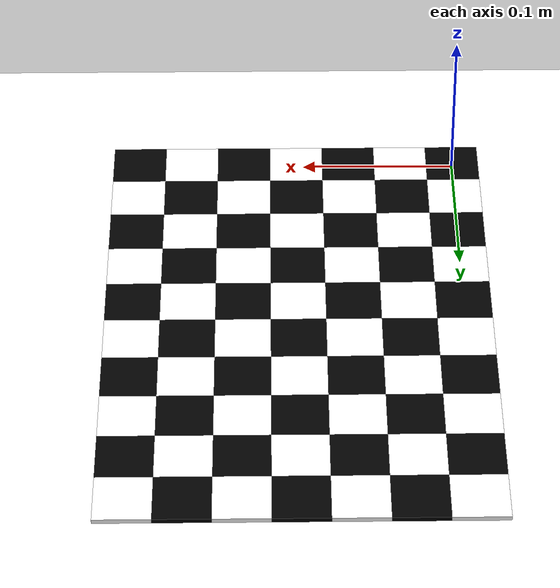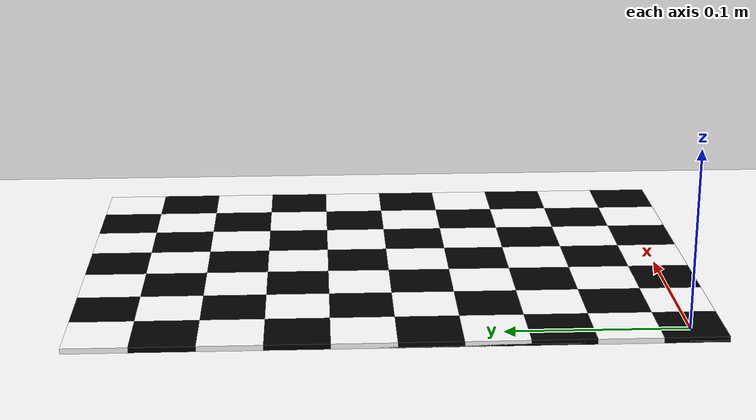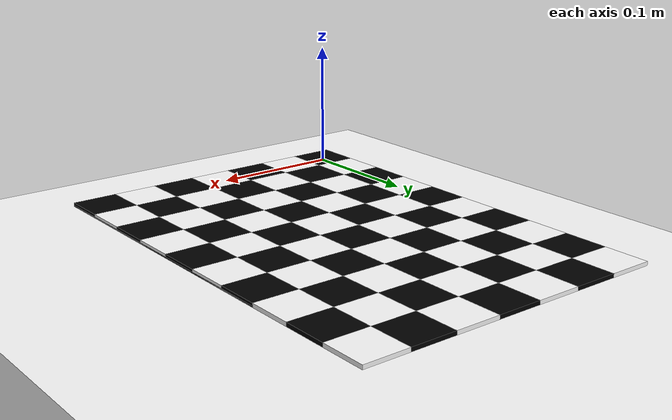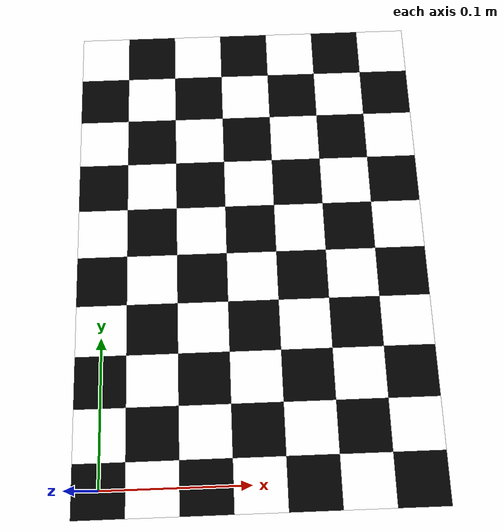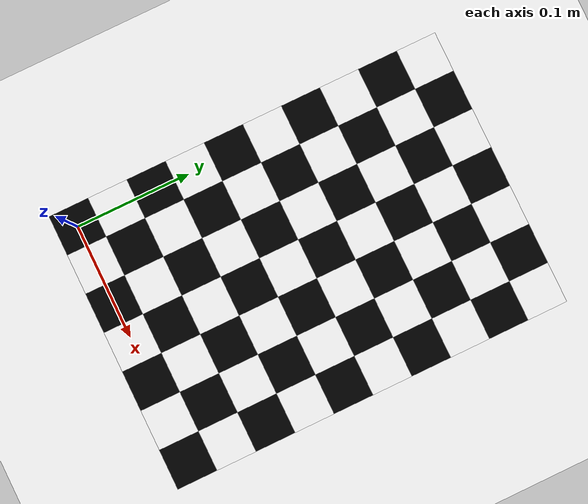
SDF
<sdf version="1.4">
  <model name='chessboard'>
  <static>true</static>
  <pose>0 0 0 0 0 0</pose>

    <!-- Auxiliary white background -->
     <link name='chessboard_back_plane'>
       <visual name='block0'>
         <pose>0 0 -0.05 0 0 0</pose>
           <geometry>
             <box>
               <size>10 10 0.05</size>
             </box>
           </geometry>
         <material>
           <ambient>1 1 1 1</ambient>
           <diffuse>1 1 1 1</diffuse>
           <specular>1 1 1 1</specular>
         </material>
       </visual>
     </link>

     <link name='chessboard_body'>
      <visual name='block0'>
        <pose>0 0 0.001 0 0 0</pose>
          <geometry>
            <box>
            <size>0.035 0.035 0.003</size>
            </box>
          </geometry>
        <material>
          <ambient>0 0 0 1</ambient>
          <diffuse>0 0 0 1</diffuse>
          <specular>0 0 0 1</specular>
        </material>
      </visual>
      <visual name='block1'>
        <pose>0 0.035 0.001 0 0 0</pose>
          <geometry>
            <box>
            <size>0.035 0.035 0.003</size>
            </box>
          </geometry>
        <material>
          <ambient>1 1 1 1</ambient>
          <diffuse>1 1 1 1</diffuse>
          <specular>1 1 1 1</specular>
        </material>
      </visual>
      <visual name='block2'>
        <pose>0 0.07 0.001 0 0 0</pose>
          <geometry>
            <box>
            <size>0.035 0.035 0.003</size>
            </box>
          </geometry>
        <material>
          <ambient>0 0 0 1</ambient>
          <diffuse>0 0 0 1</diffuse>
          <specular>0 0 0 1</specular>
        </material>
      </visual>
      <visual name='block3'>
        <pose>0 0.105 0.001 0 0 0</pose>
          <geometry>
            <box>
            <size>0.035 0.035 0.003</size>
            </box>
          </geometry>
        <material>
          <ambient>1 1 1 1</ambient>
          <diffuse>1 1 1 1</diffuse>
          <specular>1 1 1 1</specular>
        </material>
      </visual>
      <visual name='block4'>
        <pose>0 0.14 0.001 0 0 0</pose>
          <geometry>
            <box>
            <size>0.035 0.035 0.003</size>
            </box>
          </geometry>
        <material>
          <ambient>0 0 0 1</ambient>
          <diffuse>0 0 0 1</diffuse>
          <specular>0 0 0 1</specular>
        </material>
      </visual>
      <visual name='block5'>
        <pose>0 0.175 0.001 0 0 0</pose>
          <geometry>
            <box>
            <size>0.035 0.035 0.003</size>
            </box>
          </geometry>
        <material>
          <ambient>1 1 1 1</ambient>
          <diffuse>1 1 1 1</diffuse>
          <specular>1 1 1 1</specular>
        </material>
      </visual>
      <visual name='block6'>
        <pose>0 0.21 0.001 0 0 0</pose>
          <geometry>
            <box>
            <size>0.035 0.035 0.003</size>
            </box>
          </geometry>
        <material>
          <ambient>0 0 0 1</ambient>
          <diffuse>0 0 0 1</diffuse>
          <specular>0 0 0 1</specular>
        </material>
      </visual>
      <visual name='block7'>
        <pose>0 0.245 0.001 0 0 0</pose>
          <geometry>
            <box>
            <size>0.035 0.035 0.003</size>
            </box>
          </geometry>
        <material>
          <ambient>1 1 1 1</ambient>
          <diffuse>1 1 1 1</diffuse>
          <specular>1 1 1 1</specular>
        </material>
      </visual>
      <visual name='block8'>
        <pose>0 0.28 0.001 0 0 0</pose>
          <geometry>
            <box>
            <size>0.035 0.035 0.003</size>
            </box>
          </geometry>
        <material>
          <ambient>0 0 0 1</ambient>
          <diffuse>0 0 0 1</diffuse>
          <specular>0 0 0 1</specular>
        </material>
      </visual>
      <visual name='block9'>
        <pose>0 0.315 0.001 0 0 0</pose>
          <geometry>
            <box>
            <size>0.035 0.035 0.003</size>
            </box>
          </geometry>
        <material>
          <ambient>1 1 1 1</ambient>
          <diffuse>1 1 1 1</diffuse>
          <specular>1 1 1 1</specular>
        </material>
      </visual>
      <visual name='block7'>
        <pose>0.035 0 0.001 0 0 0</pose>
          <geometry>
            <box>
            <size>0.035 0.035 0.003</size>
            </box>
          </geometry>
        <material>
          <ambient>1 1 1 1</ambient>
          <diffuse>1 1 1 1</diffuse>
          <specular>1 1 1 1</specular>
        </material>
      </visual>
      <visual name='block8'>
        <pose>0.035 0.035 0.001 0 0 0</pose>
          <geometry>
            <box>
            <size>0.035 0.035 0.003</size>
            </box>
          </geometry>
        <material>
          <ambient>0 0 0 1</ambient>
          <diffuse>0 0 0 1</diffuse>
          <specular>0 0 0 1</specular>
        </material>
      </visual>
      <visual name='block9'>
        <pose>0.035 0.07 0.001 0 0 0</pose>
          <geometry>
            <box>
            <size>0.035 0.035 0.003</size>
            </box>
          </geometry>
        <material>
          <ambient>1 1 1 1</ambient>
          <diffuse>1 1 1 1</diffuse>
          <specular>1 1 1 1</specular>
        </material>
      </visual>
      <visual name='block10'>
        <pose>0.035 0.105 0.001 0 0 0</pose>
          <geometry>
            <box>
            <size>0.035 0.035 0.003</size>
            </box>
          </geometry>
        <material>
          <ambient>0 0 0 1</ambient>
          <diffuse>0 0 0 1</diffuse>
          <specular>0 0 0 1</specular>
        </material>
      </visual>
      <visual name='block11'>
        <pose>0.035 0.14 0.001 0 0 0</pose>
          <geometry>
            <box>
            <size>0.035 0.035 0.003</size>
            </box>
          </geometry>
        <material>
          <ambient>1 1 1 1</ambient>
          <diffuse>1 1 1 1</diffuse>
          <specular>1 1 1 1</specular>
        </material>
      </visual>
      <visual name='block12'>
        <pose>0.035 0.175 0.001 0 0 0</pose>
          <geometry>
            <box>
            <size>0.035 0.035 0.003</size>
            </box>
          </geometry>
        <material>
          <ambient>0 0 0 1</ambient>
          <diffuse>0 0 0 1</diffuse>
          <specular>0 0 0 1</specular>
        </material>
      </visual>
      <visual name='block13'>
        <pose>0.035 0.21 0.001 0 0 0</pose>
          <geometry>
            <box>
            <size>0.035 0.035 0.003</size>
            </box>
          </geometry>
        <material>
          <ambient>1 1 1 1</ambient>
          <diffuse>1 1 1 1</diffuse>
          <specular>1 1 1 1</specular>
        </material>
      </visual>
      <visual name='block14'>
        <pose>0.035 0.245 0.001 0 0 0</pose>
          <geometry>
            <box>
            <size>0.035 0.035 0.003</size>
            </box>
          </geometry>
        <material>
          <ambient>0 0 0 1</ambient>
          <diffuse>0 0 0 1</diffuse>
          <specular>0 0 0 1</specular>
        </material>
      </visual>
      <visual name='block15'>
        <pose>0.035 0.28 0.001 0 0 0</pose>
          <geometry>
            <box>
            <size>0.035 0.035 0.003</size>
            </box>
          </geometry>
        <material>
          <ambient>1 1 1 1</ambient>
          <diffuse>1 1 1 1</diffuse>
          <specular>1 1 1 1</specular>
        </material>
      </visual>
      <visual name='block16'>
        <pose>0.035 0.315 0.001 0 0 0</pose>
          <geometry>
            <box>
            <size>0.035 0.035 0.003</size>
            </box>
          </geometry>
        <material>
          <ambient>0 0 0 1</ambient>
          <diffuse>0 0 0 1</diffuse>
          <specular>0 0 0 1</specular>
        </material>
      </visual>
      <visual name='block14'>
        <pose>0.07 0 0.001 0 0 0</pose>
          <geometry>
            <box>
            <size>0.035 0.035 0.003</size>
            </box>
          </geometry>
        <material>
          <ambient>0 0 0 1</ambient>
          <diffuse>0 0 0 1</diffuse>
          <specular>0 0 0 1</specular>
        </material>
      </visual>
      <visual name='block15'>
        <pose>0.07 0.035 0.001 0 0 0</pose>
          <geometry>
            <box>
            <size>0.035 0.035 0.003</size>
            </box>
          </geometry>
        <material>
          <ambient>1 1 1 1</ambient>
          <diffuse>1 1 1 1</diffuse>
          <specular>1 1 1 1</specular>
        </material>
      </visual>
      <visual name='block16'>
        <pose>0.07 0.07 0.001 0 0 0</pose>
          <geometry>
            <box>
            <size>0.035 0.035 0.003</size>
            </box>
          </geometry>
        <material>
          <ambient>0 0 0 1</ambient>
          <diffuse>0 0 0 1</diffuse>
          <specular>0 0 0 1</specular>
        </material>
      </visual>
      <visual name='block17'>
        <pose>0.07 0.105 0.001 0 0 0</pose>
          <geometry>
            <box>
            <size>0.035 0.035 0.003</size>
            </box>
          </geometry>
        <material>
          <ambient>1 1 1 1</ambient>
          <diffuse>1 1 1 1</diffuse>
          <specular>1 1 1 1</specular>
        </material>
      </visual>
      <visual name='block18'>
        <pose>0.07 0.14 0.001 0 0 0</pose>
          <geometry>
            <box>
            <size>0.035 0.035 0.003</size>
            </box>
          </geometry>
        <material>
          <ambient>0 0 0 1</ambient>
          <diffuse>0 0 0 1</diffuse>
          <specular>0 0 0 1</specular>
        </material>
      </visual>
      <visual name='block19'>
        <pose>0.07 0.175 0.001 0 0 0</pose>
          <geometry>
            <box>
            <size>0.035 0.035 0.003</size>
            </box>
          </geometry>
        <material>
          <ambient>1 1 1 1</ambient>
          <diffuse>1 1 1 1</diffuse>
          <specular>1 1 1 1</specular>
        </material>
      </visual>
      <visual name='block20'>
        <pose>0.07 0.21 0.001 0 0 0</pose>
          <geometry>
            <box>
            <size>0.035 0.035 0.003</size>
            </box>
          </geometry>
        <material>
          <ambient>0 0 0 1</ambient>
          <diffuse>0 0 0 1</diffuse>
          <specular>0 0 0 1</specular>
        </material>
      </visual>
      <visual name='block21'>
        <pose>0.07 0.245 0.001 0 0 0</pose>
          <geometry>
            <box>
            <size>0.035 0.035 0.003</size>
            </box>
          </geometry>
        <material>
          <ambient>1 1 1 1</ambient>
          <diffuse>1 1 1 1</diffuse>
          <specular>1 1 1 1</specular>
        </material>
      </visual>
      <visual name='block22'>
        <pose>0.07 0.28 0.001 0 0 0</pose>
          <geometry>
            <box>
            <size>0.035 0.035 0.003</size>
            </box>
          </geometry>
        <material>
          <ambient>0 0 0 1</ambient>
          <diffuse>0 0 0 1</diffuse>
          <specular>0 0 0 1</specular>
        </material>
      </visual>
      <visual name='block23'>
        <pose>0.07 0.315 0.001 0 0 0</pose>
          <geometry>
            <box>
            <size>0.035 0.035 0.003</size>
            </box>
          </geometry>
        <material>
          <ambient>1 1 1 1</ambient>
          <diffuse>1 1 1 1</diffuse>
          <specular>1 1 1 1</specular>
        </material>
      </visual>
      <visual name='block21'>
        <pose>0.105 0 0.001 0 0 0</pose>
          <geometry>
            <box>
            <size>0.035 0.035 0.003</size>
            </box>
          </geometry>
        <material>
          <ambient>1 1 1 1</ambient>
          <diffuse>1 1 1 1</diffuse>
          <specular>1 1 1 1</specular>
        </material>
      </visual>
      <visual name='block22'>
        <pose>0.105 0.035 0.001 0 0 0</pose>
          <geometry>
            <box>
            <size>0.035 0.035 0.003</size>
            </box>
          </geometry>
        <material>
          <ambient>0 0 0 1</ambient>
          <diffuse>0 0 0 1</diffuse>
          <specular>0 0 0 1</specular>
        </material>
      </visual>
      <visual name='block23'>
        <pose>0.105 0.07 0.001 0 0 0</pose>
          <geometry>
            <box>
            <size>0.035 0.035 0.003</size>
            </box>
          </geometry>
        <material>
          <ambient>1 1 1 1</ambient>
          <diffuse>1 1 1 1</diffuse>
          <specular>1 1 1 1</specular>
        </material>
      </visual>
      <visual name='block24'>
        <pose>0.105 0.105 0.001 0 0 0</pose>
          <geometry>
            <box>
            <size>0.035 0.035 0.003</size>
            </box>
          </geometry>
        <material>
          <ambient>0 0 0 1</ambient>
          <diffuse>0 0 0 1</diffuse>
          <specular>0 0 0 1</specular>
        </material>
      </visual>
      <visual name='block25'>
        <pose>0.105 0.14 0.001 0 0 0</pose>
          <geometry>
            <box>
            <size>0.035 0.035 0.003</size>
            </box>
          </geometry>
        <material>
          <ambient>1 1 1 1</ambient>
          <diffuse>1 1 1 1</diffuse>
          <specular>1 1 1 1</specular>
        </material>
      </visual>
      <visual name='block26'>
        <pose>0.105 0.175 0.001 0 0 0</pose>
          <geometry>
            <box>
            <size>0.035 0.035 0.003</size>
            </box>
          </geometry>
        <material>
          <ambient>0 0 0 1</ambient>
          <diffuse>0 0 0 1</diffuse>
          <specular>0 0 0 1</specular>
        </material>
      </visual>
      <visual name='block27'>
        <pose>0.105 0.21 0.001 0 0 0</pose>
          <geometry>
            <box>
            <size>0.035 0.035 0.003</size>
            </box>
          </geometry>
        <material>
          <ambient>1 1 1 1</ambient>
          <diffuse>1 1 1 1</diffuse>
          <specular>1 1 1 1</specular>
        </material>
      </visual>
      <visual name='block28'>
        <pose>0.105 0.245 0.001 0 0 0</pose>
          <geometry>
            <box>
            <size>0.035 0.035 0.003</size>
            </box>
          </geometry>
        <material>
          <ambient>0 0 0 1</ambient>
          <diffuse>0 0 0 1</diffuse>
          <specular>0 0 0 1</specular>
        </material>
      </visual>
      <visual name='block29'>
        <pose>0.105 0.28 0.001 0 0 0</pose>
          <geometry>
            <box>
            <size>0.035 0.035 0.003</size>
            </box>
          </geometry>
        <material>
          <ambient>1 1 1 1</ambient>
          <diffuse>1 1 1 1</diffuse>
          <specular>1 1 1 1</specular>
        </material>
      </visual>
      <visual name='block30'>
        <pose>0.105 0.315 0.001 0 0 0</pose>
          <geometry>
            <box>
            <size>0.035 0.035 0.003</size>
            </box>
          </geometry>
        <material>
          <ambient>0 0 0 1</ambient>
          <diffuse>0 0 0 1</diffuse>
          <specular>0 0 0 1</specular>
        </material>
      </visual>
      <visual name='block28'>
        <pose>0.14 0 0.001 0 0 0</pose>
          <geometry>
            <box>
            <size>0.035 0.035 0.003</size>
            </box>
          </geometry>
        <material>
          <ambient>0 0 0 1</ambient>
          <diffuse>0 0 0 1</diffuse>
          <specular>0 0 0 1</specular>
        </material>
      </visual>
      <visual name='block29'>
        <pose>0.14 0.035 0.001 0 0 0</pose>
          <geometry>
            <box>
            <size>0.035 0.035 0.003</size>
            </box>
          </geometry>
        <material>
          <ambient>1 1 1 1</ambient>
          <diffuse>1 1 1 1</diffuse>
          <specular>1 1 1 1</specular>
        </material>
      </visual>
      <visual name='block30'>
        <pose>0.14 0.07 0.001 0 0 0</pose>
          <geometry>
            <box>
            <size>0.035 0.035 0.003</size>
            </box>
          </geometry>
        <material>
          <ambient>0 0 0 1</ambient>
          <diffuse>0 0 0 1</diffuse>
          <specular>0 0 0 1</specular>
        </material>
      </visual>
      <visual name='block31'>
        <pose>0.14 0.105 0.001 0 0 0</pose>
          <geometry>
            <box>
            <size>0.035 0.035 0.003</size>
            </box>
          </geometry>
        <material>
          <ambient>1 1 1 1</ambient>
          <diffuse>1 1 1 1</diffuse>
          <specular>1 1 1 1</specular>
        </material>
      </visual>
      <visual name='block32'>
        <pose>0.14 0.14 0.001 0 0 0</pose>
          <geometry>
            <box>
            <size>0.035 0.035 0.003</size>
            </box>
          </geometry>
        <material>
          <ambient>0 0 0 1</ambient>
          <diffuse>0 0 0 1</diffuse>
          <specular>0 0 0 1</specular>
        </material>
      </visual>
      <visual name='block33'>
        <pose>0.14 0.175 0.001 0 0 0</pose>
          <geometry>
            <box>
            <size>0.035 0.035 0.003</size>
            </box>
          </geometry>
        <material>
          <ambient>1 1 1 1</ambient>
          <diffuse>1 1 1 1</diffuse>
          <specular>1 1 1 1</specular>
        </material>
      </visual>
      <visual name='block34'>
        <pose>0.14 0.21 0.001 0 0 0</pose>
          <geometry>
            <box>
            <size>0.035 0.035 0.003</size>
            </box>
          </geometry>
        <material>
          <ambient>0 0 0 1</ambient>
          <diffuse>0 0 0 1</diffuse>
          <specular>0 0 0 1</specular>
        </material>
      </visual>
      <visual name='block35'>
        <pose>0.14 0.245 0.001 0 0 0</pose>
          <geometry>
            <box>
            <size>0.035 0.035 0.003</size>
            </box>
          </geometry>
        <material>
          <ambient>1 1 1 1</ambient>
          <diffuse>1 1 1 1</diffuse>
          <specular>1 1 1 1</specular>
        </material>
      </visual>
      <visual name='block36'>
        <pose>0.14 0.28 0.001 0 0 0</pose>
          <geometry>
            <box>
            <size>0.035 0.035 0.003</size>
            </box>
          </geometry>
        <material>
          <ambient>0 0 0 1</ambient>
          <diffuse>0 0 0 1</diffuse>
          <specular>0 0 0 1</specular>
        </material>
      </visual>
      <visual name='block37'>
        <pose>0.14 0.315 0.001 0 0 0</pose>
          <geometry>
            <box>
            <size>0.035 0.035 0.003</size>
            </box>
          </geometry>
        <material>
          <ambient>1 1 1 1</ambient>
          <diffuse>1 1 1 1</diffuse>
          <specular>1 1 1 1</specular>
        </material>
      </visual>
      <visual name='block35'>
        <pose>0.175 0 0.001 0 0 0</pose>
          <geometry>
            <box>
            <size>0.035 0.035 0.003</size>
            </box>
          </geometry>
        <material>
          <ambient>1 1 1 1</ambient>
          <diffuse>1 1 1 1</diffuse>
          <specular>1 1 1 1</specular>
        </material>
      </visual>
      <visual name='block36'>
        <pose>0.175 0.035 0.001 0 0 0</pose>
          <geometry>
            <box>
            <size>0.035 0.035 0.003</size>
            </box>
          </geometry>
        <material>
          <ambient>0 0 0 1</ambient>
          <diffuse>0 0 0 1</diffuse>
          <specular>0 0 0 1</specular>
        </material>
      </visual>
      <visual name='block37'>
        <pose>0.175 0.07 0.001 0 0 0</pose>
          <geometry>
            <box>
            <size>0.035 0.035 0.003</size>
            </box>
          </geometry>
        <material>
          <ambient>1 1 1 1</ambient>
          <diffuse>1 1 1 1</diffuse>
          <specular>1 1 1 1</specular>
        </material>
      </visual>
      <visual name='block38'>
        <pose>0.175 0.105 0.001 0 0 0</pose>
          <geometry>
            <box>
            <size>0.035 0.035 0.003</size>
            </box>
          </geometry>
        <material>
          <ambient>0 0 0 1</ambient>
          <diffuse>0 0 0 1</diffuse>
          <specular>0 0 0 1</specular>
        </material>
      </visual>
      <visual name='block39'>
        <pose>0.175 0.14 0.001 0 0 0</pose>
          <geometry>
            <box>
            <size>0.035 0.035 0.003</size>
            </box>
          </geometry>
        <material>
          <ambient>1 1 1 1</ambient>
          <diffuse>1 1 1 1</diffuse>
          <specular>1 1 1 1</specular>
        </material>
      </visual>
      <visual name='block40'>
        <pose>0.175 0.175 0.001 0 0 0</pose>
          <geometry>
            <box>
            <size>0.035 0.035 0.003</size>
            </box>
          </geometry>
        <material>
          <ambient>0 0 0 1</ambient>
          <diffuse>0 0 0 1</diffuse>
          <specular>0 0 0 1</specular>
        </material>
      </visual>
      <visual name='block41'>
        <pose>0.175 0.21 0.001 0 0 0</pose>
          <geometry>
            <box>
            <size>0.035 0.035 0.003</size>
            </box>
          </geometry>
        <material>
          <ambient>1 1 1 1</ambient>
          <diffuse>1 1 1 1</diffuse>
          <specular>1 1 1 1</specular>
        </material>
      </visual>
      <visual name='block42'>
        <pose>0.175 0.245 0.001 0 0 0</pose>
          <geometry>
            <box>
            <size>0.035 0.035 0.003</size>
            </box>
          </geometry>
        <material>
          <ambient>0 0 0 1</ambient>
          <diffuse>0 0 0 1</diffuse>
          <specular>0 0 0 1</specular>
        </material>
      </visual>
      <visual name='block43'>
        <pose>0.175 0.28 0.001 0 0 0</pose>
          <geometry>
            <box>
            <size>0.035 0.035 0.003</size>
            </box>
          </geometry>
        <material>
          <ambient>1 1 1 1</ambient>
          <diffuse>1 1 1 1</diffuse>
          <specular>1 1 1 1</specular>
        </material>
      </visual>
      <visual name='block44'>
        <pose>0.175 0.315 0.001 0 0 0</pose>
          <geometry>
            <box>
            <size>0.035 0.035 0.003</size>
            </box>
          </geometry>
        <material>
          <ambient>0 0 0 1</ambient>
          <diffuse>0 0 0 1</diffuse>
          <specular>0 0 0 1</specular>
        </material>
      </visual>
      <visual name='block42'>
        <pose>0.21 0 0.001 0 0 0</pose>
          <geometry>
            <box>
            <size>0.035 0.035 0.003</size>
            </box>
          </geometry>
        <material>
          <ambient>0 0 0 1</ambient>
          <diffuse>0 0 0 1</diffuse>
          <specular>0 0 0 1</specular>
        </material>
      </visual>
      <visual name='block43'>
        <pose>0.21 0.035 0.001 0 0 0</pose>
          <geometry>
            <box>
            <size>0.035 0.035 0.003</size>
            </box>
          </geometry>
        <material>
          <ambient>1 1 1 1</ambient>
          <diffuse>1 1 1 1</diffuse>
          <specular>1 1 1 1</specular>
        </material>
      </visual>
      <visual name='block44'>
        <pose>0.21 0.07 0.001 0 0 0</pose>
          <geometry>
            <box>
            <size>0.035 0.035 0.003</size>
            </box>
          </geometry>
        <material>
          <ambient>0 0 0 1</ambient>
          <diffuse>0 0 0 1</diffuse>
          <specular>0 0 0 1</specular>
        </material>
      </visual>
      <visual name='block45'>
        <pose>0.21 0.105 0.001 0 0 0</pose>
          <geometry>
            <box>
            <size>0.035 0.035 0.003</size>
            </box>
          </geometry>
        <material>
          <ambient>1 1 1 1</ambient>
          <diffuse>1 1 1 1</diffuse>
          <specular>1 1 1 1</specular>
        </material>
      </visual>
      <visual name='block46'>
        <pose>0.21 0.14 0.001 0 0 0</pose>
          <geometry>
            <box>
            <size>0.035 0.035 0.003</size>
            </box>
          </geometry>
        <material>
          <ambient>0 0 0 1</ambient>
          <diffuse>0 0 0 1</diffuse>
          <specular>0 0 0 1</specular>
        </material>
      </visual>
      <visual name='block47'>
        <pose>0.21 0.175 0.001 0 0 0</pose>
          <geometry>
            <box>
            <size>0.035 0.035 0.003</size>
            </box>
          </geometry>
        <material>
          <ambient>1 1 1 1</ambient>
          <diffuse>1 1 1 1</diffuse>
          <specular>1 1 1 1</specular>
        </material>
      </visual>
      <visual name='block48'>
        <pose>0.21 0.21 0.001 0 0 0</pose>
          <geometry>
            <box>
            <size>0.035 0.035 0.003</size>
            </box>
          </geometry>
        <material>
          <ambient>0 0 0 1</ambient>
          <diffuse>0 0 0 1</diffuse>
          <specular>0 0 0 1</specular>
        </material>
      </visual>
      <visual name='block49'>
        <pose>0.21 0.245 0.001 0 0 0</pose>
          <geometry>
            <box>
            <size>0.035 0.035 0.003</size>
            </box>
          </geometry>
        <material>
          <ambient>1 1 1 1</ambient>
          <diffuse>1 1 1 1</diffuse>
          <specular>1 1 1 1</specular>
        </material>
      </visual>
      <visual name='block50'>
        <pose>0.21 0.28 0.001 0 0 0</pose>
          <geometry>
            <box>
            <size>0.035 0.035 0.003</size>
            </box>
          </geometry>
        <material>
          <ambient>0 0 0 1</ambient>
          <diffuse>0 0 0 1</diffuse>
          <specular>0 0 0 1</specular>
        </material>
      </visual>
      <visual name='block51'>
        <pose>0.21 0.315 0.001 0 0 0</pose>
          <geometry>
            <box>
            <size>0.035 0.035 0.003</size>
            </box>
          </geometry>
        <material>
          <ambient>1 1 1 1</ambient>
          <diffuse>1 1 1 1</diffuse>
          <specular>1 1 1 1</specular>
        </material>
      </visual>
      <visual name='thin_layer'>
        <pose>0.105 0.105 0 0 0 0</pose>
          <geometry>
            <box>
            <size>0.245 0.245 0.001</size>
            </box>
          </geometry>
        <material>
          <ambient>0 0 0 1</ambient>
          <diffuse>0 0 0 1</diffuse>
          <specular>0 0 0 1</specular>
        </material>
      </visual>
    </link>
  </model>
</sdf>
